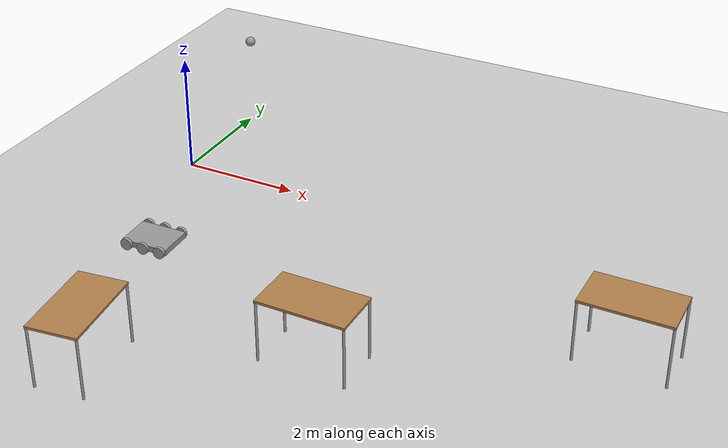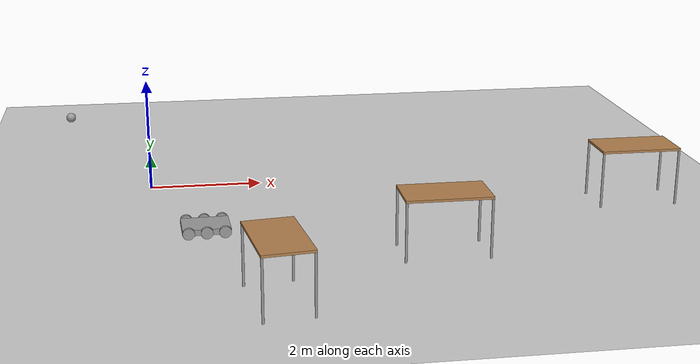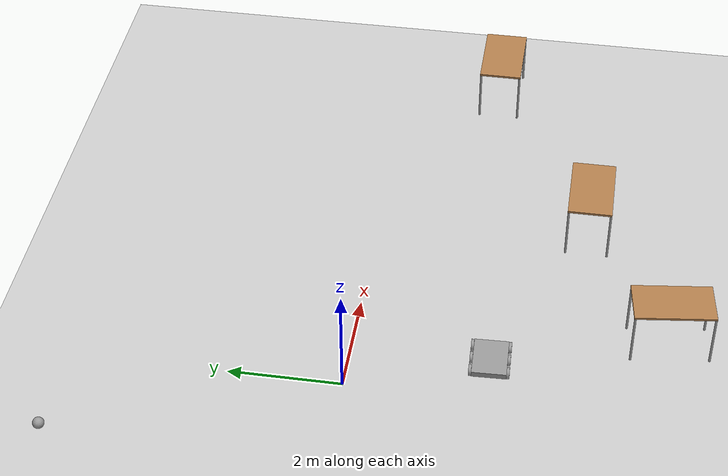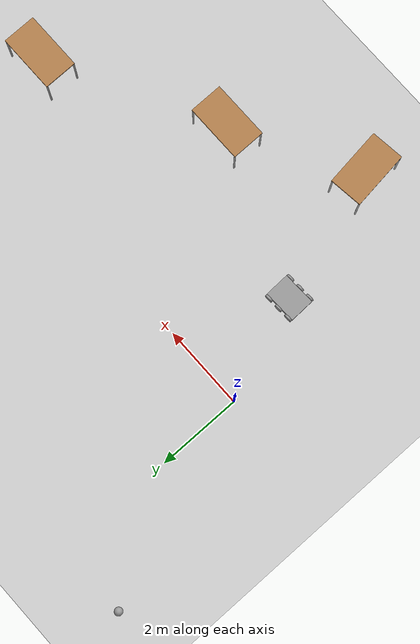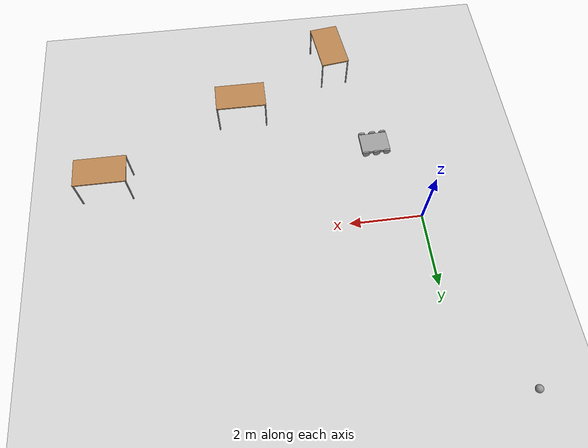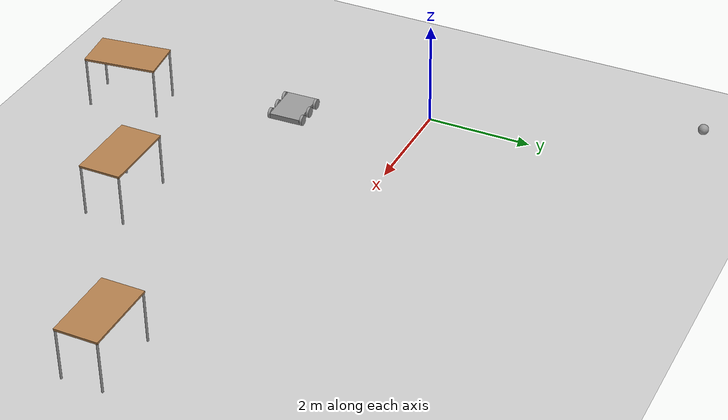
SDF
<sdf version="1.6">
 <world name="default">
  <model name="ground_plane">
   <static>1</static>
   <link name="link">
    <collision name="collision">
     <geometry><plane><normal>0 0 1</normal><size>100 100</size></plane></geometry>
     <surface><friction><ode><mu>100</mu><mu2>50</mu2></ode></friction></surface>
    </collision>
    <visual name="visual">
     <cast_shadows>0</cast_shadows>
     <geometry><plane><normal>0 0 1</normal><size>100 100</size></plane></geometry>
     <material>
      <script><uri>file://media/materials/scripts/gazebo.material</uri><name>Gazebo/Grey</name></script>
     </material>
    </visual>
   </link>
  </model>
  <model name="metal_hawk">
   <link name="link_0">
    <pose>0.748449 -1.01746 0.5 0 -0 0</pose>
    <inertial>
     <mass>1</mass>
     <inertia>
      <ixx>0.166667</ixx>
      <ixy>0</ixy>
      <ixz>0</ixz>
      <iyy>0.166667</iyy>
      <iyz>0</iyz>
      <izz>0.166667</izz>
     </inertia>
     <pose>0 0 0.1 0 -0 0</pose>
    </inertial>
    <visual name="visual">
     <geometry><box><size>0.8 0.6 0.1</size></box></geometry>
     <material>
      <lighting>1</lighting>
      <script><uri>file://media/materials/scripts/gazebo.material</uri><name>Gazebo/Grey</name></script>
      <ambient>0.3 0.3 0.3 1</ambient>
      <diffuse>0.7 0.7 0.7 1</diffuse>
      <specular>0.01 0.01 0.01 1</specular>
      <emissive>0 0 0 1</emissive>
      <shader type="vertex"><normal_map>__default__</normal_map></shader>
     </material>
    </visual>
    <collision name="collision">
     <geometry><box><size>0.8 0.6 0.1</size></box></geometry>
     <surface>
      <friction>
       <ode><mu>1</mu><mu2>1</mu2><fdir1>0 0 0</fdir1><slip1>0</slip1><slip2>0</slip2></ode>
       <torsional>
        <coefficient>1</coefficient>
        <patch_radius>0</patch_radius>
        <surface_radius>0</surface_radius>
        <use_patch_radius>1</use_patch_radius>
        <ode><slip>0</slip></ode>
       </torsional>
      </friction>
      <bounce><restitution_coefficient>0</restitution_coefficient><threshold>1e+06</threshold></bounce>
      <contact>
       <collide_without_contact>0</collide_without_contact>
       <collide_without_contact_bitmask>1</collide_without_contact_bitmask>
       <collide_bitmask>1</collide_bitmask>
       <ode>
        <soft_cfm>0</soft_cfm>
        <soft_erp>0.2</soft_erp>
        <kp>1e+13</kp>
        <kd>1</kd>
        <max_vel>0.01</max_vel>
        <min_depth>0</min_depth>
       </ode>
       <bullet>
        <split_impulse>1</split_impulse>
        <split_impulse_penetration_threshold>-0.01</split_impulse_penetration_threshold>
        <soft_cfm>0</soft_cfm>
        <soft_erp>0.2</soft_erp>
        <kp>1e+13</kp>
        <kd>1</kd>
       </bullet>
      </contact>
     </surface>
    </collision>
   </link>
   <link name="link_1">
    <pose>0.448449 -1.34247 0.5 1.5707 -0 0</pose>
    <inertial>
     <mass>1</mass>
     <inertia><ixx>0.145833</ixx><ixy>0</ixy><ixz>0</ixz><iyy>0.145833</iyy><iyz>0</iyz><izz>0.125</izz></inertia>
    </inertial>
    <visual name="visual">
     <geometry><cylinder><radius>0.1</radius><length>0.05</length></cylinder></geometry>
     <material>
      <lighting>1</lighting>
      <script><uri>file://media/materials/scripts/gazebo.material</uri><name>Gazebo/Grey</name></script>
      <ambient>0.3 0.3 0.3 1</ambient>
      <diffuse>0.7 0.7 0.7 1</diffuse>
      <specular>0.01 0.01 0.01 1</specular>
      <emissive>0 0 0 1</emissive>
      <shader type="vertex"><normal_map>__default__</normal_map></shader>
     </material>
    </visual>
    <collision name="collision">
     <geometry><cylinder><radius>0.1</radius><length>0.05</length></cylinder></geometry>
     <surface>
      <friction>
       <ode><mu>1</mu><mu2>1</mu2><fdir1>0 0 0</fdir1><slip1>0</slip1><slip2>0</slip2></ode>
       <torsional>
        <coefficient>1</coefficient>
        <patch_radius>0</patch_radius>
        <surface_radius>0</surface_radius>
        <use_patch_radius>1</use_patch_radius>
        <ode><slip>0</slip></ode>
       </torsional>
      </friction>
      <bounce><restitution_coefficient>0</restitution_coefficient><threshold>1e+06</threshold></bounce>
      <contact>
       <collide_without_contact>0</collide_without_contact>
       <collide_without_contact_bitmask>1</collide_without_contact_bitmask>
       <collide_bitmask>1</collide_bitmask>
       <ode>
        <soft_cfm>0</soft_cfm>
        <soft_erp>0.2</soft_erp>
        <kp>1e+13</kp>
        <kd>1</kd>
        <max_vel>0.01</max_vel>
        <min_depth>0</min_depth>
       </ode>
       <bullet>
        <split_impulse>1</split_impulse>
        <split_impulse_penetration_threshold>-0.01</split_impulse_penetration_threshold>
        <soft_cfm>0</soft_cfm>
        <soft_erp>0.2</soft_erp>
        <kp>1e+13</kp>
        <kd>1</kd>
       </bullet>
      </contact>
     </surface>
    </collision>
   </link>
   <link name="link_1_clone">
    <pose>1.04845 -1.34247 0.5 1.5707 -0 0</pose>
    <inertial>
     <mass>1</mass>
     <inertia><ixx>0.145833</ixx><ixy>0</ixy><ixz>0</ixz><iyy>0.145833</iyy><iyz>0</iyz><izz>0.125</izz></inertia>
    </inertial>
    <visual name="visual">
     <geometry><cylinder><radius>0.1</radius><length>0.05</length></cylinder></geometry>
     <material>
      <lighting>1</lighting>
      <script><uri>file://media/materials/scripts/gazebo.material</uri><name>Gazebo/Grey</name></script>
      <ambient>0.3 0.3 0.3 1</ambient>
      <diffuse>0.7 0.7 0.7 1</diffuse>
      <specular>0.01 0.01 0.01 1</specular>
      <emissive>0 0 0 1</emissive>
      <shader type="vertex"><normal_map>__default__</normal_map></shader>
     </material>
    </visual>
    <collision name="collision">
     <geometry><cylinder><radius>0.1</radius><length>0.05</length></cylinder></geometry>
     <surface>
      <friction>
       <ode><mu>1</mu><mu2>1</mu2><fdir1>0 0 0</fdir1><slip1>0</slip1><slip2>0</slip2></ode>
       <torsional>
        <coefficient>1</coefficient>
        <patch_radius>0</patch_radius>
        <surface_radius>0</surface_radius>
        <use_patch_radius>1</use_patch_radius>
        <ode><slip>0</slip></ode>
       </torsional>
      </friction>
      <bounce><restitution_coefficient>0</restitution_coefficient><threshold>1e+06</threshold></bounce>
      <contact>
       <collide_without_contact>0</collide_without_contact>
       <collide_without_contact_bitmask>1</collide_without_contact_bitmask>
       <collide_bitmask>1</collide_bitmask>
       <ode>
        <soft_cfm>0</soft_cfm>
        <soft_erp>0.2</soft_erp>
        <kp>1e+13</kp>
        <kd>1</kd>
        <max_vel>0.01</max_vel>
        <min_depth>0</min_depth>
       </ode>
       <bullet>
        <split_impulse>1</split_impulse>
        <split_impulse_penetration_threshold>-0.01</split_impulse_penetration_threshold>
        <soft_cfm>0</soft_cfm>
        <soft_erp>0.2</soft_erp>
        <kp>1e+13</kp>
        <kd>1</kd>
       </bullet>
      </contact>
     </surface>
    </collision>
   </link>
   <link name="link_1_clone_0">
    <pose>1.04845 -0.692452 0.5 1.5707 -0 0</pose>
    <inertial>
     <mass>1</mass>
     <inertia><ixx>0.145833</ixx><ixy>0</ixy><ixz>0</ixz><iyy>0.145833</iyy><iyz>0</iyz><izz>0.125</izz></inertia>
    </inertial>
    <visual name="visual">
     <geometry><cylinder><radius>0.1</radius><length>0.05</length></cylinder></geometry>
     <material>
      <lighting>1</lighting>
      <script><uri>file://media/materials/scripts/gazebo.material</uri><name>Gazebo/Grey</name></script>
      <ambient>0.3 0.3 0.3 1</ambient>
      <diffuse>0.7 0.7 0.7 1</diffuse>
      <specular>0.01 0.01 0.01 1</specular>
      <emissive>0 0 0 1</emissive>
      <shader type="vertex"><normal_map>__default__</normal_map></shader>
     </material>
    </visual>
    <collision name="collision">
     <geometry><cylinder><radius>0.1</radius><length>0.05</length></cylinder></geometry>
     <surface>
      <friction>
       <ode><mu>1</mu><mu2>1</mu2><fdir1>0 0 0</fdir1><slip1>0</slip1><slip2>0</slip2></ode>
       <torsional>
        <coefficient>1</coefficient>
        <patch_radius>0</patch_radius>
        <surface_radius>0</surface_radius>
        <use_patch_radius>1</use_patch_radius>
        <ode><slip>0</slip></ode>
       </torsional>
      </friction>
      <bounce><restitution_coefficient>0</restitution_coefficient><threshold>1e+06</threshold></bounce>
      <contact>
       <collide_without_contact>0</collide_without_contact>
       <collide_without_contact_bitmask>1</collide_without_contact_bitmask>
       <collide_bitmask>1</collide_bitmask>
       <ode>
        <soft_cfm>0</soft_cfm>
        <soft_erp>0.2</soft_erp>
        <kp>1e+13</kp>
        <kd>1</kd>
        <max_vel>0.01</max_vel>
        <min_depth>0</min_depth>
       </ode>
       <bullet>
        <split_impulse>1</split_impulse>
        <split_impulse_penetration_threshold>-0.01</split_impulse_penetration_threshold>
        <soft_cfm>0</soft_cfm>
        <soft_erp>0.2</soft_erp>
        <kp>1e+13</kp>
        <kd>1</kd>
       </bullet>
      </contact>
     </surface>
    </collision>
   </link>
   <link name="link_1_clone_0_clone">
    <pose>0.748449 -0.692452 0.5 1.5707 -0 0</pose>
    <inertial>
     <mass>1</mass>
     <inertia><ixx>0.145833</ixx><ixy>0</ixy><ixz>0</ixz><iyy>0.145833</iyy><iyz>0</iyz><izz>0.125</izz></inertia>
    </inertial>
    <visual name="visual">
     <geometry><cylinder><radius>0.1</radius><length>0.05</length></cylinder></geometry>
     <material>
      <lighting>1</lighting>
      <script><uri>file://media/materials/scripts/gazebo.material</uri><name>Gazebo/Grey</name></script>
      <ambient>0.3 0.3 0.3 1</ambient>
      <diffuse>0.7 0.7 0.7 1</diffuse>
      <specular>0.01 0.01 0.01 1</specular>
      <emissive>0 0 0 1</emissive>
      <shader type="vertex"><normal_map>__default__</normal_map></shader>
     </material>
    </visual>
    <collision name="collision">
     <geometry><cylinder><radius>0.1</radius><length>0.05</length></cylinder></geometry>
     <surface>
      <friction>
       <ode><mu>1</mu><mu2>1</mu2><fdir1>0 0 0</fdir1><slip1>0</slip1><slip2>0</slip2></ode>
       <torsional>
        <coefficient>1</coefficient>
        <patch_radius>0</patch_radius>
        <surface_radius>0</surface_radius>
        <use_patch_radius>1</use_patch_radius>
        <ode><slip>0</slip></ode>
       </torsional>
      </friction>
      <bounce><restitution_coefficient>0</restitution_coefficient><threshold>1e+06</threshold></bounce>
      <contact>
       <collide_without_contact>0</collide_without_contact>
       <collide_without_contact_bitmask>1</collide_without_contact_bitmask>
       <collide_bitmask>1</collide_bitmask>
       <ode>
        <soft_cfm>0</soft_cfm>
        <soft_erp>0.2</soft_erp>
        <kp>1e+13</kp>
        <kd>1</kd>
        <max_vel>0.01</max_vel>
        <min_depth>0</min_depth>
       </ode>
       <bullet>
        <split_impulse>1</split_impulse>
        <split_impulse_penetration_threshold>-0.01</split_impulse_penetration_threshold>
        <soft_cfm>0</soft_cfm>
        <soft_erp>0.2</soft_erp>
        <kp>1e+13</kp>
        <kd>1</kd>
       </bullet>
      </contact>
     </surface>
    </collision>
   </link>
   <link name="link_1_clone_0_clone_clone">
    <pose>0.448449 -0.692452 0.5 1.5707 -0 0</pose>
    <inertial>
     <mass>1</mass>
     <inertia><ixx>0.145833</ixx><ixy>0</ixy><ixz>0</ixz><iyy>0.145833</iyy><iyz>0</iyz><izz>0.125</izz></inertia>
    </inertial>
    <visual name="visual">
     <geometry><cylinder><radius>0.1</radius><length>0.05</length></cylinder></geometry>
     <material>
      <lighting>1</lighting>
      <script><uri>file://media/materials/scripts/gazebo.material</uri><name>Gazebo/Grey</name></script>
      <ambient>0.3 0.3 0.3 1</ambient>
      <diffuse>0.7 0.7 0.7 1</diffuse>
      <specular>0.01 0.01 0.01 1</specular>
      <emissive>0 0 0 1</emissive>
      <shader type="vertex"><normal_map>__default__</normal_map></shader>
     </material>
    </visual>
    <collision name="collision">
     <geometry><cylinder><radius>0.1</radius><length>0.05</length></cylinder></geometry>
     <surface>
      <friction>
       <ode><mu>1</mu><mu2>1</mu2><fdir1>0 0 0</fdir1><slip1>0</slip1><slip2>0</slip2></ode>
       <torsional>
        <coefficient>1</coefficient>
        <patch_radius>0</patch_radius>
        <surface_radius>0</surface_radius>
        <use_patch_radius>1</use_patch_radius>
        <ode><slip>0</slip></ode>
       </torsional>
      </friction>
      <bounce><restitution_coefficient>0</restitution_coefficient><threshold>1e+06</threshold></bounce>
      <contact>
       <collide_without_contact>0</collide_without_contact>
       <collide_without_contact_bitmask>1</collide_without_contact_bitmask>
       <collide_bitmask>1</collide_bitmask>
       <ode>
        <soft_cfm>0</soft_cfm>
        <soft_erp>0.2</soft_erp>
        <kp>1e+13</kp>
        <kd>1</kd>
        <max_vel>0.01</max_vel>
        <min_depth>0</min_depth>
       </ode>
       <bullet>
        <split_impulse>1</split_impulse>
        <split_impulse_penetration_threshold>-0.01</split_impulse_penetration_threshold>
        <soft_cfm>0</soft_cfm>
        <soft_erp>0.2</soft_erp>
        <kp>1e+13</kp>
        <kd>1</kd>
       </bullet>
      </contact>
     </surface>
    </collision>
   </link>
   <link name="link_1_clone_clone">
    <pose>0.748449 -1.34247 0.5 1.5707 -0 0</pose>
    <inertial>
     <mass>1</mass>
     <inertia><ixx>0.145833</ixx><ixy>0</ixy><ixz>0</ixz><iyy>0.145833</iyy><iyz>0</iyz><izz>0.125</izz></inertia>
    </inertial>
    <visual name="visual">
     <geometry><cylinder><radius>0.1</radius><length>0.05</length></cylinder></geometry>
     <material>
      <lighting>1</lighting>
      <script><uri>file://media/materials/scripts/gazebo.material</uri><name>Gazebo/Grey</name></script>
      <ambient>0.3 0.3 0.3 1</ambient>
      <diffuse>0.7 0.7 0.7 1</diffuse>
      <specular>0.01 0.01 0.01 1</specular>
      <emissive>0 0 0 1</emissive>
      <shader type="vertex"><normal_map>__default__</normal_map></shader>
     </material>
    </visual>
    <collision name="collision">
     <geometry><cylinder><radius>0.1</radius><length>0.05</length></cylinder></geometry>
     <surface>
      <friction>
       <ode><mu>1</mu><mu2>1</mu2><fdir1>0 0 0</fdir1><slip1>0</slip1><slip2>0</slip2></ode>
       <torsional>
        <coefficient>1</coefficient>
        <patch_radius>0</patch_radius>
        <surface_radius>0</surface_radius>
        <use_patch_radius>1</use_patch_radius>
        <ode><slip>0</slip></ode>
       </torsional>
      </friction>
      <bounce><restitution_coefficient>0</restitution_coefficient><threshold>1e+06</threshold></bounce>
      <contact>
       <collide_without_contact>0</collide_without_contact>
       <collide_without_contact_bitmask>1</collide_without_contact_bitmask>
       <collide_bitmask>1</collide_bitmask>
       <ode>
        <soft_cfm>0</soft_cfm>
        <soft_erp>0.2</soft_erp>
        <kp>1e+13</kp>
        <kd>1</kd>
        <max_vel>0.01</max_vel>
        <min_depth>0</min_depth>
       </ode>
       <bullet>
        <split_impulse>1</split_impulse>
        <split_impulse_penetration_threshold>-0.01</split_impulse_penetration_threshold>
        <soft_cfm>0</soft_cfm>
        <soft_erp>0.2</soft_erp>
        <kp>1e+13</kp>
        <kd>1</kd>
       </bullet>
      </contact>
     </surface>
    </collision>
   </link>
   <joint name="link_0_JOINT_0" type="revolute">
    <parent>link_0</parent>
    <child>link_1</child>
    <axis>
     <xyz>1 0 0</xyz>
     <use_parent_model_frame>0</use_parent_model_frame>
     <limit>
      <lower>-1.79769e+308</lower>
      <upper>1.79769e+308</upper>
      <effort>-1</effort>
      <velocity>-1</velocity>
     </limit>
     <dynamics>
      <spring_reference>0</spring_reference>
      <spring_stiffness>0</spring_stiffness>
      <damping>0</damping>
     </dynamics>
    </axis>
    <physics>
     <ode><limit><cfm>0</cfm><erp>0.2</erp></limit><suspension><cfm>0</cfm><erp>0.2</erp></suspension></ode>
    </physics>
   </joint>
   <joint name="link_0_JOINT_1" type="revolute">
    <parent>link_0</parent>
    <child>link_1_clone_clone</child>
    <axis>
     <xyz>1 0 0</xyz>
     <use_parent_model_frame>0</use_parent_model_frame>
     <limit>
      <lower>-1.79769e+308</lower>
      <upper>1.79769e+308</upper>
      <effort>-1</effort>
      <velocity>-1</velocity>
     </limit>
     <dynamics>
      <spring_reference>0</spring_reference>
      <spring_stiffness>0</spring_stiffness>
      <damping>0</damping>
     </dynamics>
    </axis>
    <physics>
     <ode><limit><cfm>0</cfm><erp>0.2</erp></limit><suspension><cfm>0</cfm><erp>0.2</erp></suspension></ode>
    </physics>
   </joint>
   <joint name="link_0_JOINT_2" type="revolute">
    <parent>link_0</parent>
    <child>link_1_clone</child>
    <axis>
     <xyz>1 0 0</xyz>
     <use_parent_model_frame>0</use_parent_model_frame>
     <limit>
      <lower>-1.79769e+308</lower>
      <upper>1.79769e+308</upper>
      <effort>-1</effort>
      <velocity>-1</velocity>
     </limit>
     <dynamics>
      <spring_reference>0</spring_reference>
      <spring_stiffness>0</spring_stiffness>
      <damping>0</damping>
     </dynamics>
    </axis>
    <physics>
     <ode><limit><cfm>0</cfm><erp>0.2</erp></limit><suspension><cfm>0</cfm><erp>0.2</erp></suspension></ode>
    </physics>
   </joint>
   <joint name="link_0_JOINT_3" type="revolute">
    <parent>link_0</parent>
    <child>link_1_clone_0</child>
    <axis>
     <xyz>1 0 0</xyz>
     <use_parent_model_frame>0</use_parent_model_frame>
     <limit>
      <lower>-1.79769e+308</lower>
      <upper>1.79769e+308</upper>
      <effort>-1</effort>
      <velocity>-1</velocity>
     </limit>
     <dynamics>
      <spring_reference>0</spring_reference>
      <spring_stiffness>0</spring_stiffness>
      <damping>0</damping>
     </dynamics>
    </axis>
    <physics>
     <ode><limit><cfm>0</cfm><erp>0.2</erp></limit><suspension><cfm>0</cfm><erp>0.2</erp></suspension></ode>
    </physics>
   </joint>
   <joint name="link_0_JOINT_4" type="revolute">
    <parent>link_0</parent>
    <child>link_1_clone_0_clone</child>
    <axis>
     <xyz>1 0 0</xyz>
     <use_parent_model_frame>0</use_parent_model_frame>
     <limit>
      <lower>-1.79769e+308</lower>
      <upper>1.79769e+308</upper>
      <effort>-1</effort>
      <velocity>-1</velocity>
     </limit>
     <dynamics>
      <spring_reference>0</spring_reference>
      <spring_stiffness>0</spring_stiffness>
      <damping>0</damping>
     </dynamics>
    </axis>
    <physics>
     <ode><limit><cfm>0</cfm><erp>0.2</erp></limit><suspension><cfm>0</cfm><erp>0.2</erp></suspension></ode>
    </physics>
   </joint>
   <joint name="link_0_JOINT_5" type="revolute">
    <parent>link_0</parent>
    <child>link_1_clone_0_clone_clone</child>
    <axis>
     <xyz>1 0 0</xyz>
     <use_parent_model_frame>0</use_parent_model_frame>
     <limit>
      <lower>-1.79769e+308</lower>
      <upper>1.79769e+308</upper>
      <effort>-1</effort>
      <velocity>-1</velocity>
     </limit>
     <dynamics>
      <spring_reference>0</spring_reference>
      <spring_stiffness>0</spring_stiffness>
      <damping>0</damping>
     </dynamics>
    </axis>
    <physics>
     <ode><limit><cfm>0</cfm><erp>0.2</erp></limit><suspension><cfm>0</cfm><erp>0.2</erp></suspension></ode>
    </physics>
   </joint>
   <static>0</static>
   <pose>0.101377 -1.42478 -0.400005 0 -5e-06 0.033191</pose>
  </model>
  <model name="table_1">
   <static>0</static>
   <link name="link">
    <collision name="surface">
     <pose>0 0 1 0 -0 0</pose>
     <geometry><box><size>1.5 0.8 0.03</size></box></geometry>
     <surface><friction><ode><mu>0.6</mu><mu2>0.6</mu2></ode></friction></surface>
    </collision>
    <visual name="visual1">
     <pose>0 0 1 0 -0 0</pose>
     <geometry><box><size>1.4 0.8 0.04</size></box></geometry>
     <material>
      <script><uri>file://media/materials/scripts/gazebo.material</uri><name>Gazebo/Wood</name></script>
     </material>
    </visual>
    <collision name="front_left_leg">
     <pose>0.68 0.38 0.5 0 -0 0</pose>
     <geometry><cylinder><radius>0.02</radius><length>1</length></cylinder></geometry>
    </collision>
    <visual name="front_left_leg">
     <pose>0.68 0.38 0.5 0 -0 0</pose>
     <geometry><cylinder><radius>0.02</radius><length>1</length></cylinder></geometry>
     <material>
      <script><uri>file://media/materials/scripts/gazebo.material</uri><name>Gazebo/Grey</name></script>
     </material>
    </visual>
    <collision name="front_right_leg">
     <pose>0.68 -0.38 0.5 0 -0 0</pose>
     <geometry><cylinder><radius>0.02</radius><length>1</length></cylinder></geometry>
    </collision>
    <visual name="front_right_leg">
     <pose>0.68 -0.38 0.5 0 -0 0</pose>
     <geometry><cylinder><radius>0.02</radius><length>1</length></cylinder></geometry>
     <material>
      <script><uri>file://media/materials/scripts/gazebo.material</uri><name>Gazebo/Grey</name></script>
     </material>
    </visual>
    <collision name="back_right_leg">
     <pose>-0.68 -0.38 0.5 0 -0 0</pose>
     <geometry><cylinder><radius>0.02</radius><length>1</length></cylinder></geometry>
    </collision>
    <visual name="back_right_leg">
     <pose>-0.68 -0.38 0.5 0 -0 0</pose>
     <geometry><cylinder><radius>0.02</radius><length>1</length></cylinder></geometry>
     <material>
      <script><uri>file://media/materials/scripts/gazebo.material</uri><name>Gazebo/Grey</name></script>
     </material>
    </visual>
    <collision name="back_left_leg">
     <pose>-0.68 0.38 0.5 0 -0 0</pose>
     <geometry><cylinder><radius>0.02</radius><length>1</length></cylinder></geometry>
    </collision>
    <visual name="back_left_leg">
     <pose>-0.68 0.38 0.5 0 -0 0</pose>
     <geometry><cylinder><radius>0.02</radius><length>1</length></cylinder></geometry>
     <material>
      <script><uri>file://media/materials/scripts/gazebo.material</uri><name>Gazebo/Grey</name></script>
     </material>
    </visual>
    <inertial>
     <inertia><ixx>1</ixx><ixy>0</ixy><ixz>0</ixz><iyy>1</iyy><iyz>0</iyz><izz>1</izz></inertia>
     <mass>1</mass>
    </inertial>
   </link>
   <pose>8.45566 -1.85589 -9e-06 0 -0 0</pose>
  </model>
  <model name="table_2">
   <static>0</static>
   <link name="link">
    <collision name="surface">
     <pose>0 0 1 0 -0 0</pose>
     <geometry><box><size>1.5 0.8 0.03</size></box></geometry>
     <surface><friction><ode><mu>0.6</mu><mu2>0.6</mu2></ode></friction></surface>
    </collision>
    <visual name="visual1">
     <pose>0 0 1 0 -0 0</pose>
     <geometry><box><size>1.4 0.8 0.04</size></box></geometry>
     <material>
      <script><uri>file://media/materials/scripts/gazebo.material</uri><name>Gazebo/Wood</name></script>
     </material>
    </visual>
    <collision name="front_left_leg">
     <pose>0.68 0.38 0.5 0 -0 0</pose>
     <geometry><cylinder><radius>0.02</radius><length>1</length></cylinder></geometry>
    </collision>
    <visual name="front_left_leg">
     <pose>0.68 0.38 0.5 0 -0 0</pose>
     <geometry><cylinder><radius>0.02</radius><length>1</length></cylinder></geometry>
     <material>
      <script><uri>file://media/materials/scripts/gazebo.material</uri><name>Gazebo/Grey</name></script>
     </material>
    </visual>
    <collision name="front_right_leg">
     <pose>0.68 -0.38 0.5 0 -0 0</pose>
     <geometry><cylinder><radius>0.02</radius><length>1</length></cylinder></geometry>
    </collision>
    <visual name="front_right_leg">
     <pose>0.68 -0.38 0.5 0 -0 0</pose>
     <geometry><cylinder><radius>0.02</radius><length>1</length></cylinder></geometry>
     <material>
      <script><uri>file://media/materials/scripts/gazebo.material</uri><name>Gazebo/Grey</name></script>
     </material>
    </visual>
    <collision name="back_right_leg">
     <pose>-0.68 -0.38 0.5 0 -0 0</pose>
     <geometry><cylinder><radius>0.02</radius><length>1</length></cylinder></geometry>
    </collision>
    <visual name="back_right_leg">
     <pose>-0.68 -0.38 0.5 0 -0 0</pose>
     <geometry><cylinder><radius>0.02</radius><length>1</length></cylinder></geometry>
     <material>
      <script><uri>file://media/materials/scripts/gazebo.material</uri><name>Gazebo/Grey</name></script>
     </material>
    </visual>
    <collision name="back_left_leg">
     <pose>-0.68 0.38 0.5 0 -0 0</pose>
     <geometry><cylinder><radius>0.02</radius><length>1</length></cylinder></geometry>
    </collision>
    <visual name="back_left_leg">
     <pose>-0.68 0.38 0.5 0 -0 0</pose>
     <geometry><cylinder><radius>0.02</radius><length>1</length></cylinder></geometry>
     <material>
      <script><uri>file://media/materials/scripts/gazebo.material</uri><name>Gazebo/Grey</name></script>
     </material>
    </visual>
    <inertial>
     <inertia><ixx>1</ixx><ixy>0</ixy><ixz>0</ixz><iyy>1</iyy><iyz>0</iyz><izz>1</izz></inertia>
     <mass>1</mass>
    </inertial>
   </link>
   <pose>4.57381 -3.86832 -9e-06 0 -1e-06 0</pose>
  </model>
  <model name="table_3">
   <static>0</static>
   <link name="link">
    <collision name="surface">
     <pose>0 0 1 0 -0 0</pose>
     <geometry><box><size>1.5 0.8 0.03</size></box></geometry>
     <surface><friction><ode><mu>0.6</mu><mu2>0.6</mu2></ode></friction></surface>
    </collision>
    <visual name="visual1">
     <pose>0 0 1 0 -0 0</pose>
     <geometry><box><size>1.4 0.8 0.04</size></box></geometry>
     <material>
      <script><uri>file://media/materials/scripts/gazebo.material</uri><name>Gazebo/Wood</name></script>
     </material>
    </visual>
    <collision name="front_left_leg">
     <pose>0.68 0.38 0.5 0 -0 0</pose>
     <geometry><cylinder><radius>0.02</radius><length>1</length></cylinder></geometry>
    </collision>
    <visual name="front_left_leg">
     <pose>0.68 0.38 0.5 0 -0 0</pose>
     <geometry><cylinder><radius>0.02</radius><length>1</length></cylinder></geometry>
     <material>
      <script><uri>file://media/materials/scripts/gazebo.material</uri><name>Gazebo/Grey</name></script>
     </material>
    </visual>
    <collision name="front_right_leg">
     <pose>0.68 -0.38 0.5 0 -0 0</pose>
     <geometry><cylinder><radius>0.02</radius><length>1</length></cylinder></geometry>
    </collision>
    <visual name="front_right_leg">
     <pose>0.68 -0.38 0.5 0 -0 0</pose>
     <geometry><cylinder><radius>0.02</radius><length>1</length></cylinder></geometry>
     <material>
      <script><uri>file://media/materials/scripts/gazebo.material</uri><name>Gazebo/Grey</name></script>
     </material>
    </visual>
    <collision name="back_right_leg">
     <pose>-0.68 -0.38 0.5 0 -0 0</pose>
     <geometry><cylinder><radius>0.02</radius><length>1</length></cylinder></geometry>
    </collision>
    <visual name="back_right_leg">
     <pose>-0.68 -0.38 0.5 0 -0 0</pose>
     <geometry><cylinder><radius>0.02</radius><length>1</length></cylinder></geometry>
     <material>
      <script><uri>file://media/materials/scripts/gazebo.material</uri><name>Gazebo/Grey</name></script>
     </material>
    </visual>
    <collision name="back_left_leg">
     <pose>-0.68 0.38 0.5 0 -0 0</pose>
     <geometry><cylinder><radius>0.02</radius><length>1</length></cylinder></geometry>
    </collision>
    <visual name="back_left_leg">
     <pose>-0.68 0.38 0.5 0 -0 0</pose>
     <geometry><cylinder><radius>0.02</radius><length>1</length></cylinder></geometry>
     <material>
      <script><uri>file://media/materials/scripts/gazebo.material</uri><name>Gazebo/Grey</name></script>
     </material>
    </visual>
    <inertial>
     <inertia><ixx>1</ixx><ixy>0</ixy><ixz>0</ixz><iyy>1</iyy><iyz>0</iyz><izz>1</izz></inertia>
     <mass>1</mass>
    </inertial>
   </link>
   <pose>1.79225 -5.41635 -2e-06 0 0 -1.44794</pose>
  </model>
  <model name="my_ball">
   <link name="link_0">
    <inertial>
     <mass>1</mass>
     <inertia><ixx>0.1</ixx><ixy>0</ixy><ixz>0</ixz><iyy>0.1</iyy><iyz>0</iyz><izz>0.1</izz></inertia>
    </inertial>
    <visual name="visual">
     <geometry><sphere><radius>0.1</radius></sphere></geometry>
     <material>
      <lighting>1</lighting>
      <script><uri>file://media/materials/scripts/gazebo.material</uri><name>Gazebo/Grey</name></script>
      <ambient>1 1 1 1</ambient>
      <diffuse>1 1 1 1</diffuse>
      <specular>1 1 1 1</specular>
      <emissive>1 1 1 1</emissive>
      <shader type="vertex"><normal_map>__default__</normal_map></shader>
     </material>
    </visual>
    <collision name="collision">
     <geometry><sphere><radius>0.1</radius></sphere></geometry>
     <surface>
      <friction>
       <ode><mu>1</mu><mu2>1</mu2><fdir1>0 0 0</fdir1><slip1>0</slip1><slip2>0</slip2></ode>
       <torsional>
        <coefficient>1</coefficient>
        <patch_radius>0</patch_radius>
        <surface_radius>0</surface_radius>
        <use_patch_radius>1</use_patch_radius>
        <ode><slip>0</slip></ode>
       </torsional>
      </friction>
      <bounce><restitution_coefficient>0</restitution_coefficient><threshold>1e+06</threshold></bounce>
      <contact>
       <collide_without_contact>0</collide_without_contact>
       <collide_without_contact_bitmask>1</collide_without_contact_bitmask>
       <collide_bitmask>1</collide_bitmask>
       <ode>
        <soft_cfm>0</soft_cfm>
        <soft_erp>0.2</soft_erp>
        <kp>1e+13</kp>
        <kd>1</kd>
        <max_vel>0.01</max_vel>
        <min_depth>0</min_depth>
       </ode>
       <bullet>
        <split_impulse>1</split_impulse>
        <split_impulse_penetration_threshold>-0.01</split_impulse_penetration_threshold>
        <soft_cfm>0</soft_cfm>
        <soft_erp>0.2</soft_erp>
        <kp>1e+13</kp>
        <kd>1</kd>
       </bullet>
      </contact>
     </surface>
    </collision>
   </link>
   <static>0</static>
   <pose>-1.70408 4.79512 0.1 0 -0 0</pose>
  </model>
 </world>
</sdf>
